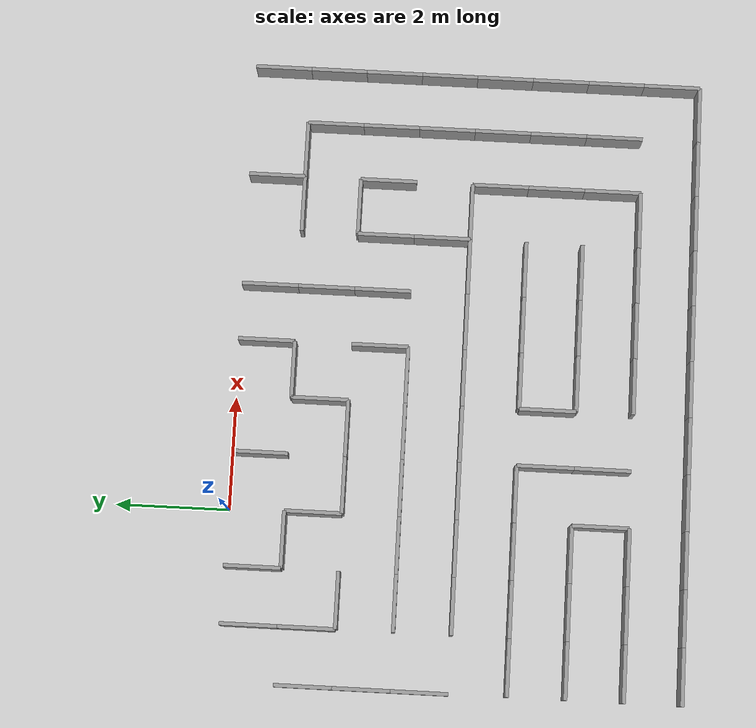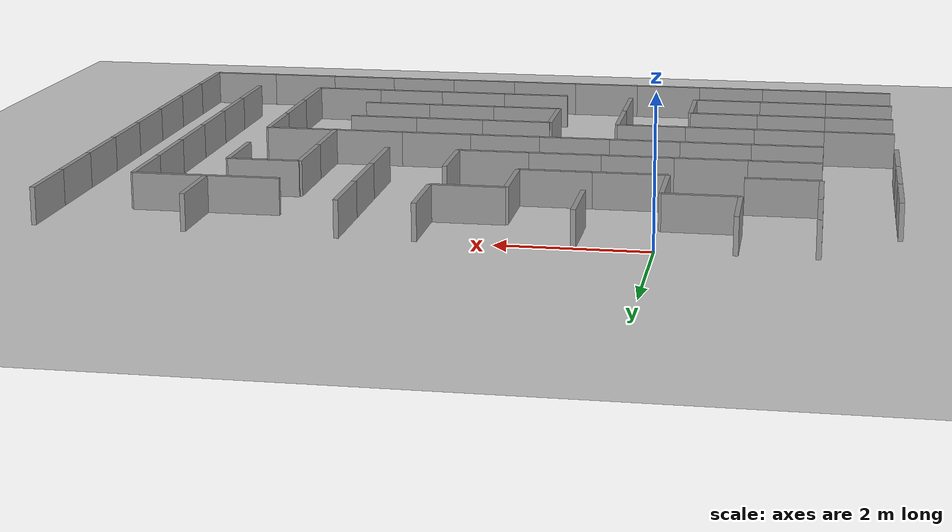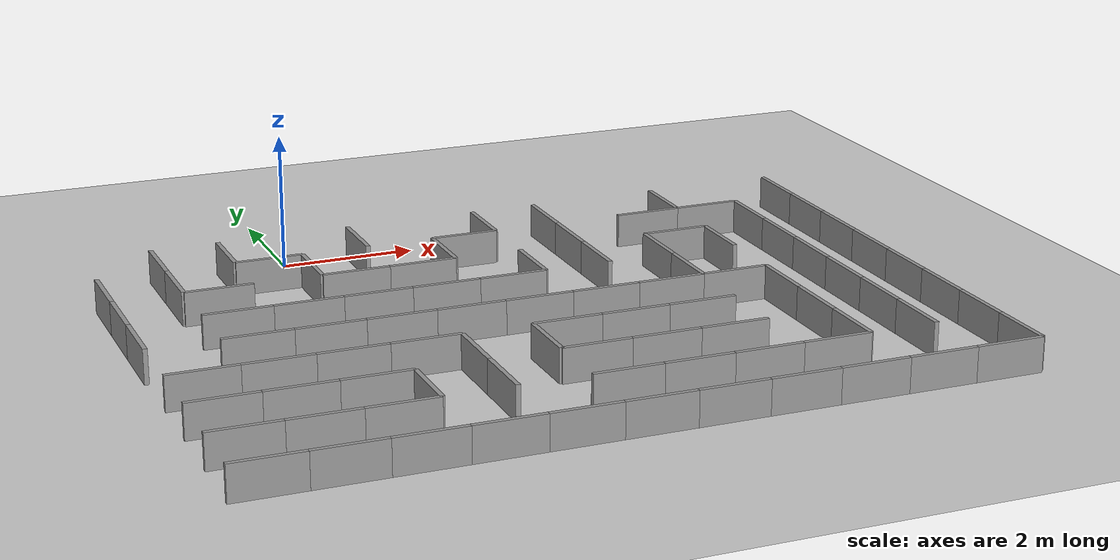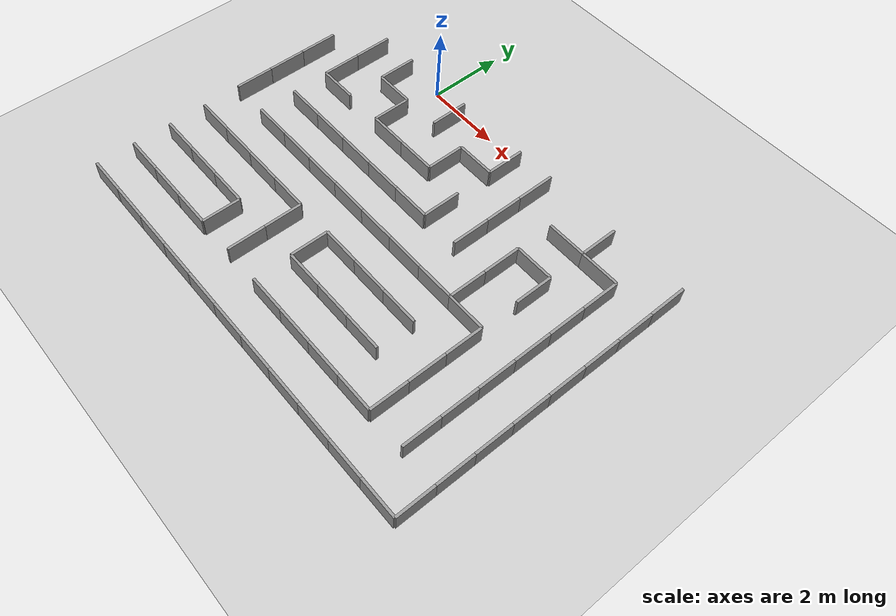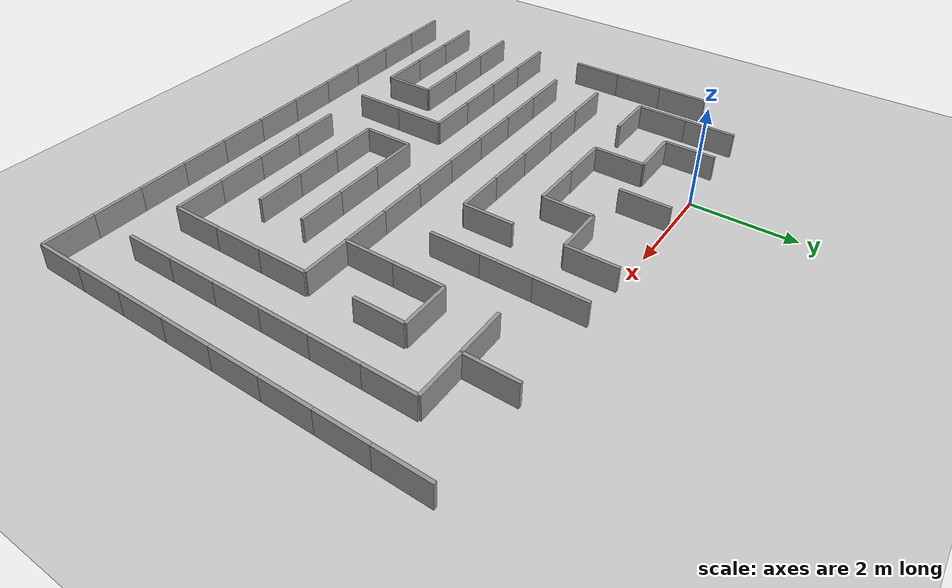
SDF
<sdf version="1.7">
 <world name="maze_world">
  <include><uri>model://sun</uri></include>
  <include><uri>model://ground_plane</uri></include>
  <model name="wall_145">
   <static>true</static>
   <pose>-2.0 -0.5 0.25 0 0 1.5707963267948966</pose>
   <link name="link">
    <collision name="collision"><geometry><box><size>1.0 0.066 0.5</size></box></geometry></collision>
    <visual name="visual">
     <geometry><box><size>1.0 0.066 0.5</size></box></geometry>
     <material>
      <script><uri>file://media/materials/scripts/gazebo.material</uri><name>Gazebo/Grey</name></script>
     </material>
    </visual>
   </link>
  </model>
  <model name="wall_146">
   <static>true</static>
   <pose>-1.0 -0.5 0.25 0 0 1.5707963267948966</pose>
   <link name="link">
    <collision name="collision"><geometry><box><size>1.0 0.066 0.5</size></box></geometry></collision>
    <visual name="visual">
     <geometry><box><size>1.0 0.066 0.5</size></box></geometry>
     <material>
      <script><uri>file://media/materials/scripts/gazebo.material</uri><name>Gazebo/Grey</name></script>
     </material>
    </visual>
   </link>
  </model>
  <model name="wall_147">
   <static>true</static>
   <pose>1.0 -0.5 0.25 0 0 1.5707963267948966</pose>
   <link name="link">
    <collision name="collision"><geometry><box><size>1.0 0.066 0.5</size></box></geometry></collision>
    <visual name="visual">
     <geometry><box><size>1.0 0.066 0.5</size></box></geometry>
     <material>
      <script><uri>file://media/materials/scripts/gazebo.material</uri><name>Gazebo/Grey</name></script>
     </material>
    </visual>
   </link>
  </model>
  <model name="wall_148">
   <static>true</static>
   <pose>3.0 -0.5 0.25 0 0 1.5707963267948966</pose>
   <link name="link">
    <collision name="collision"><geometry><box><size>1.0 0.066 0.5</size></box></geometry></collision>
    <visual name="visual">
     <geometry><box><size>1.0 0.066 0.5</size></box></geometry>
     <material>
      <script><uri>file://media/materials/scripts/gazebo.material</uri><name>Gazebo/Grey</name></script>
     </material>
    </visual>
   </link>
  </model>
  <model name="wall_149">
   <static>true</static>
   <pose>4.0 -0.5 0.25 0 0 1.5707963267948966</pose>
   <link name="link">
    <collision name="collision"><geometry><box><size>1.0 0.066 0.5</size></box></geometry></collision>
    <visual name="visual">
     <geometry><box><size>1.0 0.066 0.5</size></box></geometry>
     <material>
      <script><uri>file://media/materials/scripts/gazebo.material</uri><name>Gazebo/Grey</name></script>
     </material>
    </visual>
   </link>
  </model>
  <model name="wall_150">
   <static>true</static>
   <pose>6.0 -0.5 0.25 0 0 1.5707963267948966</pose>
   <link name="link">
    <collision name="collision"><geometry><box><size>1.0 0.066 0.5</size></box></geometry></collision>
    <visual name="visual">
     <geometry><box><size>1.0 0.066 0.5</size></box></geometry>
     <material>
      <script><uri>file://media/materials/scripts/gazebo.material</uri><name>Gazebo/Grey</name></script>
     </material>
    </visual>
   </link>
  </model>
  <model name="wall_151">
   <static>true</static>
   <pose>8.0 -0.5 0.25 0 0 1.5707963267948966</pose>
   <link name="link">
    <collision name="collision"><geometry><box><size>1.0 0.066 0.5</size></box></geometry></collision>
    <visual name="visual">
     <geometry><box><size>1.0 0.066 0.5</size></box></geometry>
     <material>
      <script><uri>file://media/materials/scripts/gazebo.material</uri><name>Gazebo/Grey</name></script>
     </material>
    </visual>
   </link>
  </model>
  <model name="wall_153">
   <static>true</static>
   <pose>-0.5 -1.0 0.25 0 0 0</pose>
   <link name="link">
    <collision name="collision"><geometry><box><size>1.0 0.066 0.5</size></box></geometry></collision>
    <visual name="visual">
     <geometry><box><size>1.0 0.066 0.5</size></box></geometry>
     <material>
      <script><uri>file://media/materials/scripts/gazebo.material</uri><name>Gazebo/Grey</name></script>
     </material>
    </visual>
   </link>
  </model>
  <model name="wall_154">
   <static>true</static>
   <pose>2.5 -1.0 0.25 0 0 0</pose>
   <link name="link">
    <collision name="collision"><geometry><box><size>1.0 0.066 0.5</size></box></geometry></collision>
    <visual name="visual">
     <geometry><box><size>1.0 0.066 0.5</size></box></geometry>
     <material>
      <script><uri>file://media/materials/scripts/gazebo.material</uri><name>Gazebo/Grey</name></script>
     </material>
    </visual>
   </link>
  </model>
  <model name="wall_155">
   <static>true</static>
   <pose>5.5 -1.0 0.25 0 0 0</pose>
   <link name="link">
    <collision name="collision"><geometry><box><size>1.0 0.066 0.5</size></box></geometry></collision>
    <visual name="visual">
     <geometry><box><size>1.0 0.066 0.5</size></box></geometry>
     <material>
      <script><uri>file://media/materials/scripts/gazebo.material</uri><name>Gazebo/Grey</name></script>
     </material>
    </visual>
   </link>
  </model>
  <model name="wall_156">
   <static>true</static>
   <pose>6.5 -1.0 0.25 0 0 0</pose>
   <link name="link">
    <collision name="collision"><geometry><box><size>1.0 0.066 0.5</size></box></geometry></collision>
    <visual name="visual">
     <geometry><box><size>1.0 0.066 0.5</size></box></geometry>
     <material>
      <script><uri>file://media/materials/scripts/gazebo.material</uri><name>Gazebo/Grey</name></script>
     </material>
    </visual>
   </link>
  </model>
  <model name="wall_160">
   <static>true</static>
   <pose>-3.0 -1.5 0.25 0 0 1.5707963267948966</pose>
   <link name="link">
    <collision name="collision"><geometry><box><size>1.0 0.066 0.5</size></box></geometry></collision>
    <visual name="visual">
     <geometry><box><size>1.0 0.066 0.5</size></box></geometry>
     <material>
      <script><uri>file://media/materials/scripts/gazebo.material</uri><name>Gazebo/Grey</name></script>
     </material>
    </visual>
   </link>
  </model>
  <model name="wall_161">
   <static>true</static>
   <pose>-2.0 -1.5 0.25 0 0 1.5707963267948966</pose>
   <link name="link">
    <collision name="collision"><geometry><box><size>1.0 0.066 0.5</size></box></geometry></collision>
    <visual name="visual">
     <geometry><box><size>1.0 0.066 0.5</size></box></geometry>
     <material>
      <script><uri>file://media/materials/scripts/gazebo.material</uri><name>Gazebo/Grey</name></script>
     </material>
    </visual>
   </link>
  </model>
  <model name="wall_162">
   <static>true</static>
   <pose>0.0 -1.5 0.25 0 0 1.5707963267948966</pose>
   <link name="link">
    <collision name="collision"><geometry><box><size>1.0 0.066 0.5</size></box></geometry></collision>
    <visual name="visual">
     <geometry><box><size>1.0 0.066 0.5</size></box></geometry>
     <material>
      <script><uri>file://media/materials/scripts/gazebo.material</uri><name>Gazebo/Grey</name></script>
     </material>
    </visual>
   </link>
  </model>
  <model name="wall_163">
   <static>true</static>
   <pose>2.0 -1.5 0.25 0 0 1.5707963267948966</pose>
   <link name="link">
    <collision name="collision"><geometry><box><size>1.0 0.066 0.5</size></box></geometry></collision>
    <visual name="visual">
     <geometry><box><size>1.0 0.066 0.5</size></box></geometry>
     <material>
      <script><uri>file://media/materials/scripts/gazebo.material</uri><name>Gazebo/Grey</name></script>
     </material>
    </visual>
   </link>
  </model>
  <model name="wall_164">
   <static>true</static>
   <pose>4.0 -1.5 0.25 0 0 1.5707963267948966</pose>
   <link name="link">
    <collision name="collision"><geometry><box><size>1.0 0.066 0.5</size></box></geometry></collision>
    <visual name="visual">
     <geometry><box><size>1.0 0.066 0.5</size></box></geometry>
     <material>
      <script><uri>file://media/materials/scripts/gazebo.material</uri><name>Gazebo/Grey</name></script>
     </material>
    </visual>
   </link>
  </model>
  <model name="wall_165">
   <static>true</static>
   <pose>7.0 -1.5 0.25 0 0 1.5707963267948966</pose>
   <link name="link">
    <collision name="collision"><geometry><box><size>1.0 0.066 0.5</size></box></geometry></collision>
    <visual name="visual">
     <geometry><box><size>1.0 0.066 0.5</size></box></geometry>
     <material>
      <script><uri>file://media/materials/scripts/gazebo.material</uri><name>Gazebo/Grey</name></script>
     </material>
    </visual>
   </link>
  </model>
  <model name="wall_166">
   <static>true</static>
   <pose>8.0 -1.5 0.25 0 0 1.5707963267948966</pose>
   <link name="link">
    <collision name="collision"><geometry><box><size>1.0 0.066 0.5</size></box></geometry></collision>
    <visual name="visual">
     <geometry><box><size>1.0 0.066 0.5</size></box></geometry>
     <material>
      <script><uri>file://media/materials/scripts/gazebo.material</uri><name>Gazebo/Grey</name></script>
     </material>
    </visual>
   </link>
  </model>
  <model name="wall_168">
   <static>true</static>
   <pose>-1.5 -2.0 0.25 0 0 0</pose>
   <link name="link">
    <collision name="collision"><geometry><box><size>1.0 0.066 0.5</size></box></geometry></collision>
    <visual name="visual">
     <geometry><box><size>1.0 0.066 0.5</size></box></geometry>
     <material>
      <script><uri>file://media/materials/scripts/gazebo.material</uri><name>Gazebo/Grey</name></script>
     </material>
    </visual>
   </link>
  </model>
  <model name="wall_169">
   <static>true</static>
   <pose>0.5 -2.0 0.25 0 0 0</pose>
   <link name="link">
    <collision name="collision"><geometry><box><size>1.0 0.066 0.5</size></box></geometry></collision>
    <visual name="visual">
     <geometry><box><size>1.0 0.066 0.5</size></box></geometry>
     <material>
      <script><uri>file://media/materials/scripts/gazebo.material</uri><name>Gazebo/Grey</name></script>
     </material>
    </visual>
   </link>
  </model>
  <model name="wall_170">
   <static>true</static>
   <pose>1.5 -2.0 0.25 0 0 0</pose>
   <link name="link">
    <collision name="collision"><geometry><box><size>1.0 0.066 0.5</size></box></geometry></collision>
    <visual name="visual">
     <geometry><box><size>1.0 0.066 0.5</size></box></geometry>
     <material>
      <script><uri>file://media/materials/scripts/gazebo.material</uri><name>Gazebo/Grey</name></script>
     </material>
    </visual>
   </link>
  </model>
  <model name="wall_171">
   <static>true</static>
   <pose>5.5 -2.0 0.25 0 0 0</pose>
   <link name="link">
    <collision name="collision"><geometry><box><size>1.0 0.066 0.5</size></box></geometry></collision>
    <visual name="visual">
     <geometry><box><size>1.0 0.066 0.5</size></box></geometry>
     <material>
      <script><uri>file://media/materials/scripts/gazebo.material</uri><name>Gazebo/Grey</name></script>
     </material>
    </visual>
   </link>
  </model>
  <model name="wall_176">
   <static>true</static>
   <pose>-3.0 -2.5 0.25 0 0 1.5707963267948966</pose>
   <link name="link">
    <collision name="collision"><geometry><box><size>1.0 0.066 0.5</size></box></geometry></collision>
    <visual name="visual">
     <geometry><box><size>1.0 0.066 0.5</size></box></geometry>
     <material>
      <script><uri>file://media/materials/scripts/gazebo.material</uri><name>Gazebo/Grey</name></script>
     </material>
    </visual>
   </link>
  </model>
  <model name="wall_177">
   <static>true</static>
   <pose>3.0 -2.5 0.25 0 0 1.5707963267948966</pose>
   <link name="link">
    <collision name="collision"><geometry><box><size>1.0 0.066 0.5</size></box></geometry></collision>
    <visual name="visual">
     <geometry><box><size>1.0 0.066 0.5</size></box></geometry>
     <material>
      <script><uri>file://media/materials/scripts/gazebo.material</uri><name>Gazebo/Grey</name></script>
     </material>
    </visual>
   </link>
  </model>
  <model name="wall_178">
   <static>true</static>
   <pose>4.0 -2.5 0.25 0 0 1.5707963267948966</pose>
   <link name="link">
    <collision name="collision"><geometry><box><size>1.0 0.066 0.5</size></box></geometry></collision>
    <visual name="visual">
     <geometry><box><size>1.0 0.066 0.5</size></box></geometry>
     <material>
      <script><uri>file://media/materials/scripts/gazebo.material</uri><name>Gazebo/Grey</name></script>
     </material>
    </visual>
   </link>
  </model>
  <model name="wall_179">
   <static>true</static>
   <pose>5.0 -2.5 0.25 0 0 1.5707963267948966</pose>
   <link name="link">
    <collision name="collision"><geometry><box><size>1.0 0.066 0.5</size></box></geometry></collision>
    <visual name="visual">
     <geometry><box><size>1.0 0.066 0.5</size></box></geometry>
     <material>
      <script><uri>file://media/materials/scripts/gazebo.material</uri><name>Gazebo/Grey</name></script>
     </material>
    </visual>
   </link>
  </model>
  <model name="wall_180">
   <static>true</static>
   <pose>6.0 -2.5 0.25 0 0 1.5707963267948966</pose>
   <link name="link">
    <collision name="collision"><geometry><box><size>1.0 0.066 0.5</size></box></geometry></collision>
    <visual name="visual">
     <geometry><box><size>1.0 0.066 0.5</size></box></geometry>
     <material>
      <script><uri>file://media/materials/scripts/gazebo.material</uri><name>Gazebo/Grey</name></script>
     </material>
    </visual>
   </link>
  </model>
  <model name="wall_181">
   <static>true</static>
   <pose>7.0 -2.5 0.25 0 0 1.5707963267948966</pose>
   <link name="link">
    <collision name="collision"><geometry><box><size>1.0 0.066 0.5</size></box></geometry></collision>
    <visual name="visual">
     <geometry><box><size>1.0 0.066 0.5</size></box></geometry>
     <material>
      <script><uri>file://media/materials/scripts/gazebo.material</uri><name>Gazebo/Grey</name></script>
     </material>
    </visual>
   </link>
  </model>
  <model name="wall_182">
   <static>true</static>
   <pose>8.0 -2.5 0.25 0 0 1.5707963267948966</pose>
   <link name="link">
    <collision name="collision"><geometry><box><size>1.0 0.066 0.5</size></box></geometry></collision>
    <visual name="visual">
     <geometry><box><size>1.0 0.066 0.5</size></box></geometry>
     <material>
      <script><uri>file://media/materials/scripts/gazebo.material</uri><name>Gazebo/Grey</name></script>
     </material>
    </visual>
   </link>
  </model>
  <model name="wall_184">
   <static>true</static>
   <pose>-1.5 -3.0 0.25 0 0 0</pose>
   <link name="link">
    <collision name="collision"><geometry><box><size>1.0 0.066 0.5</size></box></geometry></collision>
    <visual name="visual">
     <geometry><box><size>1.0 0.066 0.5</size></box></geometry>
     <material>
      <script><uri>file://media/materials/scripts/gazebo.material</uri><name>Gazebo/Grey</name></script>
     </material>
    </visual>
   </link>
  </model>
  <model name="wall_185">
   <static>true</static>
   <pose>-0.5 -3.0 0.25 0 0 0</pose>
   <link name="link">
    <collision name="collision"><geometry><box><size>1.0 0.066 0.5</size></box></geometry></collision>
    <visual name="visual">
     <geometry><box><size>1.0 0.066 0.5</size></box></geometry>
     <material>
      <script><uri>file://media/materials/scripts/gazebo.material</uri><name>Gazebo/Grey</name></script>
     </material>
    </visual>
   </link>
  </model>
  <model name="wall_186">
   <static>true</static>
   <pose>0.5 -3.0 0.25 0 0 0</pose>
   <link name="link">
    <collision name="collision"><geometry><box><size>1.0 0.066 0.5</size></box></geometry></collision>
    <visual name="visual">
     <geometry><box><size>1.0 0.066 0.5</size></box></geometry>
     <material>
      <script><uri>file://media/materials/scripts/gazebo.material</uri><name>Gazebo/Grey</name></script>
     </material>
    </visual>
   </link>
  </model>
  <model name="wall_187">
   <static>true</static>
   <pose>1.5 -3.0 0.25 0 0 0</pose>
   <link name="link">
    <collision name="collision"><geometry><box><size>1.0 0.066 0.5</size></box></geometry></collision>
    <visual name="visual">
     <geometry><box><size>1.0 0.066 0.5</size></box></geometry>
     <material>
      <script><uri>file://media/materials/scripts/gazebo.material</uri><name>Gazebo/Grey</name></script>
     </material>
    </visual>
   </link>
  </model>
  <model name="wall_188">
   <static>true</static>
   <pose>2.5 -3.0 0.25 0 0 0</pose>
   <link name="link">
    <collision name="collision"><geometry><box><size>1.0 0.066 0.5</size></box></geometry></collision>
    <visual name="visual">
     <geometry><box><size>1.0 0.066 0.5</size></box></geometry>
     <material>
      <script><uri>file://media/materials/scripts/gazebo.material</uri><name>Gazebo/Grey</name></script>
     </material>
    </visual>
   </link>
  </model>
  <model name="wall_192">
   <static>true</static>
   <pose>-3.0 -3.5 0.25 0 0 1.5707963267948966</pose>
   <link name="link">
    <collision name="collision"><geometry><box><size>1.0 0.066 0.5</size></box></geometry></collision>
    <visual name="visual">
     <geometry><box><size>1.0 0.066 0.5</size></box></geometry>
     <material>
      <script><uri>file://media/materials/scripts/gazebo.material</uri><name>Gazebo/Grey</name></script>
     </material>
    </visual>
   </link>
  </model>
  <model name="wall_193">
   <static>true</static>
   <pose>5.0 -3.5 0.25 0 0 1.5707963267948966</pose>
   <link name="link">
    <collision name="collision"><geometry><box><size>1.0 0.066 0.5</size></box></geometry></collision>
    <visual name="visual">
     <geometry><box><size>1.0 0.066 0.5</size></box></geometry>
     <material>
      <script><uri>file://media/materials/scripts/gazebo.material</uri><name>Gazebo/Grey</name></script>
     </material>
    </visual>
   </link>
  </model>
  <model name="wall_194">
   <static>true</static>
   <pose>7.0 -3.5 0.25 0 0 1.5707963267948966</pose>
   <link name="link">
    <collision name="collision"><geometry><box><size>1.0 0.066 0.5</size></box></geometry></collision>
    <visual name="visual">
     <geometry><box><size>1.0 0.066 0.5</size></box></geometry>
     <material>
      <script><uri>file://media/materials/scripts/gazebo.material</uri><name>Gazebo/Grey</name></script>
     </material>
    </visual>
   </link>
  </model>
  <model name="wall_195">
   <static>true</static>
   <pose>8.0 -3.5 0.25 0 0 1.5707963267948966</pose>
   <link name="link">
    <collision name="collision"><geometry><box><size>1.0 0.066 0.5</size></box></geometry></collision>
    <visual name="visual">
     <geometry><box><size>1.0 0.066 0.5</size></box></geometry>
     <material>
      <script><uri>file://media/materials/scripts/gazebo.material</uri><name>Gazebo/Grey</name></script>
     </material>
    </visual>
   </link>
  </model>
  <model name="wall_197">
   <static>true</static>
   <pose>-1.5 -4.0 0.25 0 0 0</pose>
   <link name="link">
    <collision name="collision"><geometry><box><size>1.0 0.066 0.5</size></box></geometry></collision>
    <visual name="visual">
     <geometry><box><size>1.0 0.066 0.5</size></box></geometry>
     <material>
      <script><uri>file://media/materials/scripts/gazebo.material</uri><name>Gazebo/Grey</name></script>
     </material>
    </visual>
   </link>
  </model>
  <model name="wall_198">
   <static>true</static>
   <pose>-0.5 -4.0 0.25 0 0 0</pose>
   <link name="link">
    <collision name="collision"><geometry><box><size>1.0 0.066 0.5</size></box></geometry></collision>
    <visual name="visual">
     <geometry><box><size>1.0 0.066 0.5</size></box></geometry>
     <material>
      <script><uri>file://media/materials/scripts/gazebo.material</uri><name>Gazebo/Grey</name></script>
     </material>
    </visual>
   </link>
  </model>
  <model name="wall_199">
   <static>true</static>
   <pose>0.5 -4.0 0.25 0 0 0</pose>
   <link name="link">
    <collision name="collision"><geometry><box><size>1.0 0.066 0.5</size></box></geometry></collision>
    <visual name="visual">
     <geometry><box><size>1.0 0.066 0.5</size></box></geometry>
     <material>
      <script><uri>file://media/materials/scripts/gazebo.material</uri><name>Gazebo/Grey</name></script>
     </material>
    </visual>
   </link>
  </model>
  <model name="wall_200">
   <static>true</static>
   <pose>1.5 -4.0 0.25 0 0 0</pose>
   <link name="link">
    <collision name="collision"><geometry><box><size>1.0 0.066 0.5</size></box></geometry></collision>
    <visual name="visual">
     <geometry><box><size>1.0 0.066 0.5</size></box></geometry>
     <material>
      <script><uri>file://media/materials/scripts/gazebo.material</uri><name>Gazebo/Grey</name></script>
     </material>
    </visual>
   </link>
  </model>
  <model name="wall_201">
   <static>true</static>
   <pose>2.5 -4.0 0.25 0 0 0</pose>
   <link name="link">
    <collision name="collision"><geometry><box><size>1.0 0.066 0.5</size></box></geometry></collision>
    <visual name="visual">
     <geometry><box><size>1.0 0.066 0.5</size></box></geometry>
     <material>
      <script><uri>file://media/materials/scripts/gazebo.material</uri><name>Gazebo/Grey</name></script>
     </material>
    </visual>
   </link>
  </model>
  <model name="wall_202">
   <static>true</static>
   <pose>3.5 -4.0 0.25 0 0 0</pose>
   <link name="link">
    <collision name="collision"><geometry><box><size>1.0 0.066 0.5</size></box></geometry></collision>
    <visual name="visual">
     <geometry><box><size>1.0 0.066 0.5</size></box></geometry>
     <material>
      <script><uri>file://media/materials/scripts/gazebo.material</uri><name>Gazebo/Grey</name></script>
     </material>
    </visual>
   </link>
  </model>
  <model name="wall_203">
   <static>true</static>
   <pose>4.5 -4.0 0.25 0 0 0</pose>
   <link name="link">
    <collision name="collision"><geometry><box><size>1.0 0.066 0.5</size></box></geometry></collision>
    <visual name="visual">
     <geometry><box><size>1.0 0.066 0.5</size></box></geometry>
     <material>
      <script><uri>file://media/materials/scripts/gazebo.material</uri><name>Gazebo/Grey</name></script>
     </material>
    </visual>
   </link>
  </model>
  <model name="wall_204">
   <static>true</static>
   <pose>5.5 -4.0 0.25 0 0 0</pose>
   <link name="link">
    <collision name="collision"><geometry><box><size>1.0 0.066 0.5</size></box></geometry></collision>
    <visual name="visual">
     <geometry><box><size>1.0 0.066 0.5</size></box></geometry>
     <material>
      <script><uri>file://media/materials/scripts/gazebo.material</uri><name>Gazebo/Grey</name></script>
     </material>
    </visual>
   </link>
  </model>
  <model name="wall_208">
   <static>true</static>
   <pose>6.0 -4.5 0.25 0 0 1.5707963267948966</pose>
   <link name="link">
    <collision name="collision"><geometry><box><size>1.0 0.066 0.5</size></box></geometry></collision>
    <visual name="visual">
     <geometry><box><size>1.0 0.066 0.5</size></box></geometry>
     <material>
      <script><uri>file://media/materials/scripts/gazebo.material</uri><name>Gazebo/Grey</name></script>
     </material>
    </visual>
   </link>
  </model>
  <model name="wall_209">
   <static>true</static>
   <pose>7.0 -4.5 0.25 0 0 1.5707963267948966</pose>
   <link name="link">
    <collision name="collision"><geometry><box><size>1.0 0.066 0.5</size></box></geometry></collision>
    <visual name="visual">
     <geometry><box><size>1.0 0.066 0.5</size></box></geometry>
     <material>
      <script><uri>file://media/materials/scripts/gazebo.material</uri><name>Gazebo/Grey</name></script>
     </material>
    </visual>
   </link>
  </model>
  <model name="wall_210">
   <static>true</static>
   <pose>8.0 -4.5 0.25 0 0 1.5707963267948966</pose>
   <link name="link">
    <collision name="collision"><geometry><box><size>1.0 0.066 0.5</size></box></geometry></collision>
    <visual name="visual">
     <geometry><box><size>1.0 0.066 0.5</size></box></geometry>
     <material>
      <script><uri>file://media/materials/scripts/gazebo.material</uri><name>Gazebo/Grey</name></script>
     </material>
    </visual>
   </link>
  </model>
  <model name="wall_214">
   <static>true</static>
   <pose>-2.5 -5.0 0.25 0 0 0</pose>
   <link name="link">
    <collision name="collision"><geometry><box><size>1.0 0.066 0.5</size></box></geometry></collision>
    <visual name="visual">
     <geometry><box><size>1.0 0.066 0.5</size></box></geometry>
     <material>
      <script><uri>file://media/materials/scripts/gazebo.material</uri><name>Gazebo/Grey</name></script>
     </material>
    </visual>
   </link>
  </model>
  <model name="wall_215">
   <static>true</static>
   <pose>-1.5 -5.0 0.25 0 0 0</pose>
   <link name="link">
    <collision name="collision"><geometry><box><size>1.0 0.066 0.5</size></box></geometry></collision>
    <visual name="visual">
     <geometry><box><size>1.0 0.066 0.5</size></box></geometry>
     <material>
      <script><uri>file://media/materials/scripts/gazebo.material</uri><name>Gazebo/Grey</name></script>
     </material>
    </visual>
   </link>
  </model>
  <model name="wall_216">
   <static>true</static>
   <pose>-0.5 -5.0 0.25 0 0 0</pose>
   <link name="link">
    <collision name="collision"><geometry><box><size>1.0 0.066 0.5</size></box></geometry></collision>
    <visual name="visual">
     <geometry><box><size>1.0 0.066 0.5</size></box></geometry>
     <material>
      <script><uri>file://media/materials/scripts/gazebo.material</uri><name>Gazebo/Grey</name></script>
     </material>
    </visual>
   </link>
  </model>
  <model name="wall_217">
   <static>true</static>
   <pose>0.5 -5.0 0.25 0 0 0</pose>
   <link name="link">
    <collision name="collision"><geometry><box><size>1.0 0.066 0.5</size></box></geometry></collision>
    <visual name="visual">
     <geometry><box><size>1.0 0.066 0.5</size></box></geometry>
     <material>
      <script><uri>file://media/materials/scripts/gazebo.material</uri><name>Gazebo/Grey</name></script>
     </material>
    </visual>
   </link>
  </model>
  <model name="wall_218">
   <static>true</static>
   <pose>2.5 -5.0 0.25 0 0 0</pose>
   <link name="link">
    <collision name="collision"><geometry><box><size>1.0 0.066 0.5</size></box></geometry></collision>
    <visual name="visual">
     <geometry><box><size>1.0 0.066 0.5</size></box></geometry>
     <material>
      <script><uri>file://media/materials/scripts/gazebo.material</uri><name>Gazebo/Grey</name></script>
     </material>
    </visual>
   </link>
  </model>
  <model name="wall_219">
   <static>true</static>
   <pose>3.5 -5.0 0.25 0 0 0</pose>
   <link name="link">
    <collision name="collision"><geometry><box><size>1.0 0.066 0.5</size></box></geometry></collision>
    <visual name="visual">
     <geometry><box><size>1.0 0.066 0.5</size></box></geometry>
     <material>
      <script><uri>file://media/materials/scripts/gazebo.material</uri><name>Gazebo/Grey</name></script>
     </material>
    </visual>
   </link>
  </model>
  <model name="wall_220">
   <static>true</static>
   <pose>4.5 -5.0 0.25 0 0 0</pose>
   <link name="link">
    <collision name="collision"><geometry><box><size>1.0 0.066 0.5</size></box></geometry></collision>
    <visual name="visual">
     <geometry><box><size>1.0 0.066 0.5</size></box></geometry>
     <material>
      <script><uri>file://media/materials/scripts/gazebo.material</uri><name>Gazebo/Grey</name></script>
     </material>
    </visual>
   </link>
  </model>
  <model name="wall_224">
   <static>true</static>
   <pose>1.0 -5.5 0.25 0 0 1.5707963267948966</pose>
   <link name="link">
    <collision name="collision"><geometry><box><size>1.0 0.066 0.5</size></box></geometry></collision>
    <visual name="visual">
     <geometry><box><size>1.0 0.066 0.5</size></box></geometry>
     <material>
      <script><uri>file://media/materials/scripts/gazebo.material</uri><name>Gazebo/Grey</name></script>
     </material>
    </visual>
   </link>
  </model>
  <model name="wall_225">
   <static>true</static>
   <pose>2.0 -5.5 0.25 0 0 1.5707963267948966</pose>
   <link name="link">
    <collision name="collision"><geometry><box><size>1.0 0.066 0.5</size></box></geometry></collision>
    <visual name="visual">
     <geometry><box><size>1.0 0.066 0.5</size></box></geometry>
     <material>
      <script><uri>file://media/materials/scripts/gazebo.material</uri><name>Gazebo/Grey</name></script>
     </material>
    </visual>
   </link>
  </model>
  <model name="wall_226">
   <static>true</static>
   <pose>6.0 -5.5 0.25 0 0 1.5707963267948966</pose>
   <link name="link">
    <collision name="collision"><geometry><box><size>1.0 0.066 0.5</size></box></geometry></collision>
    <visual name="visual">
     <geometry><box><size>1.0 0.066 0.5</size></box></geometry>
     <material>
      <script><uri>file://media/materials/scripts/gazebo.material</uri><name>Gazebo/Grey</name></script>
     </material>
    </visual>
   </link>
  </model>
  <model name="wall_227">
   <static>true</static>
   <pose>7.0 -5.5 0.25 0 0 1.5707963267948966</pose>
   <link name="link">
    <collision name="collision"><geometry><box><size>1.0 0.066 0.5</size></box></geometry></collision>
    <visual name="visual">
     <geometry><box><size>1.0 0.066 0.5</size></box></geometry>
     <material>
      <script><uri>file://media/materials/scripts/gazebo.material</uri><name>Gazebo/Grey</name></script>
     </material>
    </visual>
   </link>
  </model>
  <model name="wall_228">
   <static>true</static>
   <pose>8.0 -5.5 0.25 0 0 1.5707963267948966</pose>
   <link name="link">
    <collision name="collision"><geometry><box><size>1.0 0.066 0.5</size></box></geometry></collision>
    <visual name="visual">
     <geometry><box><size>1.0 0.066 0.5</size></box></geometry>
     <material>
      <script><uri>file://media/materials/scripts/gazebo.material</uri><name>Gazebo/Grey</name></script>
     </material>
    </visual>
   </link>
  </model>
  <model name="wall_230">
   <static>true</static>
   <pose>-2.5 -6.0 0.25 0 0 0</pose>
   <link name="link">
    <collision name="collision"><geometry><box><size>1.0 0.066 0.5</size></box></geometry></collision>
    <visual name="visual">
     <geometry><box><size>1.0 0.066 0.5</size></box></geometry>
     <material>
      <script><uri>file://media/materials/scripts/gazebo.material</uri><name>Gazebo/Grey</name></script>
     </material>
    </visual>
   </link>
  </model>
  <model name="wall_231">
   <static>true</static>
   <pose>-1.5 -6.0 0.25 0 0 0</pose>
   <link name="link">
    <collision name="collision"><geometry><box><size>1.0 0.066 0.5</size></box></geometry></collision>
    <visual name="visual">
     <geometry><box><size>1.0 0.066 0.5</size></box></geometry>
     <material>
      <script><uri>file://media/materials/scripts/gazebo.material</uri><name>Gazebo/Grey</name></script>
     </material>
    </visual>
   </link>
  </model>
  <model name="wall_232">
   <static>true</static>
   <pose>-0.5 -6.0 0.25 0 0 0</pose>
   <link name="link">
    <collision name="collision"><geometry><box><size>1.0 0.066 0.5</size></box></geometry></collision>
    <visual name="visual">
     <geometry><box><size>1.0 0.066 0.5</size></box></geometry>
     <material>
      <script><uri>file://media/materials/scripts/gazebo.material</uri><name>Gazebo/Grey</name></script>
     </material>
    </visual>
   </link>
  </model>
  <model name="wall_233">
   <static>true</static>
   <pose>2.5 -6.0 0.25 0 0 0</pose>
   <link name="link">
    <collision name="collision"><geometry><box><size>1.0 0.066 0.5</size></box></geometry></collision>
    <visual name="visual">
     <geometry><box><size>1.0 0.066 0.5</size></box></geometry>
     <material>
      <script><uri>file://media/materials/scripts/gazebo.material</uri><name>Gazebo/Grey</name></script>
     </material>
    </visual>
   </link>
  </model>
  <model name="wall_234">
   <static>true</static>
   <pose>3.5 -6.0 0.25 0 0 0</pose>
   <link name="link">
    <collision name="collision"><geometry><box><size>1.0 0.066 0.5</size></box></geometry></collision>
    <visual name="visual">
     <geometry><box><size>1.0 0.066 0.5</size></box></geometry>
     <material>
      <script><uri>file://media/materials/scripts/gazebo.material</uri><name>Gazebo/Grey</name></script>
     </material>
    </visual>
   </link>
  </model>
  <model name="wall_235">
   <static>true</static>
   <pose>4.5 -6.0 0.25 0 0 0</pose>
   <link name="link">
    <collision name="collision"><geometry><box><size>1.0 0.066 0.5</size></box></geometry></collision>
    <visual name="visual">
     <geometry><box><size>1.0 0.066 0.5</size></box></geometry>
     <material>
      <script><uri>file://media/materials/scripts/gazebo.material</uri><name>Gazebo/Grey</name></script>
     </material>
    </visual>
   </link>
  </model>
  <model name="wall_240">
   <static>true</static>
   <pose>0.0 -6.5 0.25 0 0 1.5707963267948966</pose>
   <link name="link">
    <collision name="collision"><geometry><box><size>1.0 0.066 0.5</size></box></geometry></collision>
    <visual name="visual">
     <geometry><box><size>1.0 0.066 0.5</size></box></geometry>
     <material>
      <script><uri>file://media/materials/scripts/gazebo.material</uri><name>Gazebo/Grey</name></script>
     </material>
    </visual>
   </link>
  </model>
  <model name="wall_241">
   <static>true</static>
   <pose>1.0 -6.5 0.25 0 0 1.5707963267948966</pose>
   <link name="link">
    <collision name="collision"><geometry><box><size>1.0 0.066 0.5</size></box></geometry></collision>
    <visual name="visual">
     <geometry><box><size>1.0 0.066 0.5</size></box></geometry>
     <material>
      <script><uri>file://media/materials/scripts/gazebo.material</uri><name>Gazebo/Grey</name></script>
     </material>
    </visual>
   </link>
  </model>
  <model name="wall_242">
   <static>true</static>
   <pose>6.0 -6.5 0.25 0 0 1.5707963267948966</pose>
   <link name="link">
    <collision name="collision"><geometry><box><size>1.0 0.066 0.5</size></box></geometry></collision>
    <visual name="visual">
     <geometry><box><size>1.0 0.066 0.5</size></box></geometry>
     <material>
      <script><uri>file://media/materials/scripts/gazebo.material</uri><name>Gazebo/Grey</name></script>
     </material>
    </visual>
   </link>
  </model>
  <model name="wall_243">
   <static>true</static>
   <pose>7.0 -6.5 0.25 0 0 1.5707963267948966</pose>
   <link name="link">
    <collision name="collision"><geometry><box><size>1.0 0.066 0.5</size></box></geometry></collision>
    <visual name="visual">
     <geometry><box><size>1.0 0.066 0.5</size></box></geometry>
     <material>
      <script><uri>file://media/materials/scripts/gazebo.material</uri><name>Gazebo/Grey</name></script>
     </material>
    </visual>
   </link>
  </model>
  <model name="wall_244">
   <static>true</static>
   <pose>8.0 -6.5 0.25 0 0 1.5707963267948966</pose>
   <link name="link">
    <collision name="collision"><geometry><box><size>1.0 0.066 0.5</size></box></geometry></collision>
    <visual name="visual">
     <geometry><box><size>1.0 0.066 0.5</size></box></geometry>
     <material>
      <script><uri>file://media/materials/scripts/gazebo.material</uri><name>Gazebo/Grey</name></script>
     </material>
    </visual>
   </link>
  </model>
  <model name="wall_247">
   <static>true</static>
   <pose>-2.5 -7.0 0.25 0 0 0</pose>
   <link name="link">
    <collision name="collision"><geometry><box><size>1.0 0.066 0.5</size></box></geometry></collision>
    <visual name="visual">
     <geometry><box><size>1.0 0.066 0.5</size></box></geometry>
     <material>
      <script><uri>file://media/materials/scripts/gazebo.material</uri><name>Gazebo/Grey</name></script>
     </material>
    </visual>
   </link>
  </model>
  <model name="wall_248">
   <static>true</static>
   <pose>-1.5 -7.0 0.25 0 0 0</pose>
   <link name="link">
    <collision name="collision"><geometry><box><size>1.0 0.066 0.5</size></box></geometry></collision>
    <visual name="visual">
     <geometry><box><size>1.0 0.066 0.5</size></box></geometry>
     <material>
      <script><uri>file://media/materials/scripts/gazebo.material</uri><name>Gazebo/Grey</name></script>
     </material>
    </visual>
   </link>
  </model>
  <model name="wall_249">
   <static>true</static>
   <pose>-0.5 -7.0 0.25 0 0 0</pose>
   <link name="link">
    <collision name="collision"><geometry><box><size>1.0 0.066 0.5</size></box></geometry></collision>
    <visual name="visual">
     <geometry><box><size>1.0 0.066 0.5</size></box></geometry>
     <material>
      <script><uri>file://media/materials/scripts/gazebo.material</uri><name>Gazebo/Grey</name></script>
     </material>
    </visual>
   </link>
  </model>
  <model name="wall_250">
   <static>true</static>
   <pose>2.5 -7.0 0.25 0 0 0</pose>
   <link name="link">
    <collision name="collision"><geometry><box><size>1.0 0.066 0.5</size></box></geometry></collision>
    <visual name="visual">
     <geometry><box><size>1.0 0.066 0.5</size></box></geometry>
     <material>
      <script><uri>file://media/materials/scripts/gazebo.material</uri><name>Gazebo/Grey</name></script>
     </material>
    </visual>
   </link>
  </model>
  <model name="wall_251">
   <static>true</static>
   <pose>3.5 -7.0 0.25 0 0 0</pose>
   <link name="link">
    <collision name="collision"><geometry><box><size>1.0 0.066 0.5</size></box></geometry></collision>
    <visual name="visual">
     <geometry><box><size>1.0 0.066 0.5</size></box></geometry>
     <material>
      <script><uri>file://media/materials/scripts/gazebo.material</uri><name>Gazebo/Grey</name></script>
     </material>
    </visual>
   </link>
  </model>
  <model name="wall_252">
   <static>true</static>
   <pose>4.5 -7.0 0.25 0 0 0</pose>
   <link name="link">
    <collision name="collision"><geometry><box><size>1.0 0.066 0.5</size></box></geometry></collision>
    <visual name="visual">
     <geometry><box><size>1.0 0.066 0.5</size></box></geometry>
     <material>
      <script><uri>file://media/materials/scripts/gazebo.material</uri><name>Gazebo/Grey</name></script>
     </material>
    </visual>
   </link>
  </model>
  <model name="wall_253">
   <static>true</static>
   <pose>5.5 -7.0 0.25 0 0 0</pose>
   <link name="link">
    <collision name="collision"><geometry><box><size>1.0 0.066 0.5</size></box></geometry></collision>
    <visual name="visual">
     <geometry><box><size>1.0 0.066 0.5</size></box></geometry>
     <material>
      <script><uri>file://media/materials/scripts/gazebo.material</uri><name>Gazebo/Grey</name></script>
     </material>
    </visual>
   </link>
  </model>
  <model name="wall_256">
   <static>true</static>
   <pose>8.0 -7.5 0.25 0 0 1.5707963267948966</pose>
   <link name="link">
    <collision name="collision"><geometry><box><size>1.0 0.066 0.5</size></box></geometry></collision>
    <visual name="visual">
     <geometry><box><size>1.0 0.066 0.5</size></box></geometry>
     <material>
      <script><uri>file://media/materials/scripts/gazebo.material</uri><name>Gazebo/Grey</name></script>
     </material>
    </visual>
   </link>
  </model>
  <model name="wall_262">
   <static>true</static>
   <pose>-2.5 -8.0 0.25 0 0 0</pose>
   <link name="link">
    <collision name="collision"><geometry><box><size>1.0 0.066 0.5</size></box></geometry></collision>
    <visual name="visual">
     <geometry><box><size>1.0 0.066 0.5</size></box></geometry>
     <material>
      <script><uri>file://media/materials/scripts/gazebo.material</uri><name>Gazebo/Grey</name></script>
     </material>
    </visual>
   </link>
  </model>
  <model name="wall_263">
   <static>true</static>
   <pose>-1.5 -8.0 0.25 0 0 0</pose>
   <link name="link">
    <collision name="collision"><geometry><box><size>1.0 0.066 0.5</size></box></geometry></collision>
    <visual name="visual">
     <geometry><box><size>1.0 0.066 0.5</size></box></geometry>
     <material>
      <script><uri>file://media/materials/scripts/gazebo.material</uri><name>Gazebo/Grey</name></script>
     </material>
    </visual>
   </link>
  </model>
  <model name="wall_264">
   <static>true</static>
   <pose>-0.5 -8.0 0.25 0 0 0</pose>
   <link name="link">
    <collision name="collision"><geometry><box><size>1.0 0.066 0.5</size></box></geometry></collision>
    <visual name="visual">
     <geometry><box><size>1.0 0.066 0.5</size></box></geometry>
     <material>
      <script><uri>file://media/materials/scripts/gazebo.material</uri><name>Gazebo/Grey</name></script>
     </material>
    </visual>
   </link>
  </model>
  <model name="wall_265">
   <static>true</static>
   <pose>0.5 -8.0 0.25 0 0 0</pose>
   <link name="link">
    <collision name="collision"><geometry><box><size>1.0 0.066 0.5</size></box></geometry></collision>
    <visual name="visual">
     <geometry><box><size>1.0 0.066 0.5</size></box></geometry>
     <material>
      <script><uri>file://media/materials/scripts/gazebo.material</uri><name>Gazebo/Grey</name></script>
     </material>
    </visual>
   </link>
  </model>
  <model name="wall_266">
   <static>true</static>
   <pose>1.5 -8.0 0.25 0 0 0</pose>
   <link name="link">
    <collision name="collision"><geometry><box><size>1.0 0.066 0.5</size></box></geometry></collision>
    <visual name="visual">
     <geometry><box><size>1.0 0.066 0.5</size></box></geometry>
     <material>
      <script><uri>file://media/materials/scripts/gazebo.material</uri><name>Gazebo/Grey</name></script>
     </material>
    </visual>
   </link>
  </model>
  <model name="wall_267">
   <static>true</static>
   <pose>2.5 -8.0 0.25 0 0 0</pose>
   <link name="link">
    <collision name="collision"><geometry><box><size>1.0 0.066 0.5</size></box></geometry></collision>
    <visual name="visual">
     <geometry><box><size>1.0 0.066 0.5</size></box></geometry>
     <material>
      <script><uri>file://media/materials/scripts/gazebo.material</uri><name>Gazebo/Grey</name></script>
     </material>
    </visual>
   </link>
  </model>
  <model name="wall_268">
   <static>true</static>
   <pose>3.5 -8.0 0.25 0 0 0</pose>
   <link name="link">
    <collision name="collision"><geometry><box><size>1.0 0.066 0.5</size></box></geometry></collision>
    <visual name="visual">
     <geometry><box><size>1.0 0.066 0.5</size></box></geometry>
     <material>
      <script><uri>file://media/materials/scripts/gazebo.material</uri><name>Gazebo/Grey</name></script>
     </material>
    </visual>
   </link>
  </model>
  <model name="wall_269">
   <static>true</static>
   <pose>4.5 -8.0 0.25 0 0 0</pose>
   <link name="link">
    <collision name="collision"><geometry><box><size>1.0 0.066 0.5</size></box></geometry></collision>
    <visual name="visual">
     <geometry><box><size>1.0 0.066 0.5</size></box></geometry>
     <material>
      <script><uri>file://media/materials/scripts/gazebo.material</uri><name>Gazebo/Grey</name></script>
     </material>
    </visual>
   </link>
  </model>
  <model name="wall_270">
   <static>true</static>
   <pose>5.5 -8.0 0.25 0 0 0</pose>
   <link name="link">
    <collision name="collision"><geometry><box><size>1.0 0.066 0.5</size></box></geometry></collision>
    <visual name="visual">
     <geometry><box><size>1.0 0.066 0.5</size></box></geometry>
     <material>
      <script><uri>file://media/materials/scripts/gazebo.material</uri><name>Gazebo/Grey</name></script>
     </material>
    </visual>
   </link>
  </model>
  <model name="wall_271">
   <static>true</static>
   <pose>6.5 -8.0 0.25 0 0 0</pose>
   <link name="link">
    <collision name="collision"><geometry><box><size>1.0 0.066 0.5</size></box></geometry></collision>
    <visual name="visual">
     <geometry><box><size>1.0 0.066 0.5</size></box></geometry>
     <material>
      <script><uri>file://media/materials/scripts/gazebo.material</uri><name>Gazebo/Grey</name></script>
     </material>
    </visual>
   </link>
  </model>
  <model name="wall_272">
   <static>true</static>
   <pose>7.5 -8.0 0.25 0 0 0</pose>
   <link name="link">
    <collision name="collision"><geometry><box><size>1.0 0.066 0.5</size></box></geometry></collision>
    <visual name="visual">
     <geometry><box><size>1.0 0.066 0.5</size></box></geometry>
     <material>
      <script><uri>file://media/materials/scripts/gazebo.material</uri><name>Gazebo/Grey</name></script>
     </material>
    </visual>
   </link>
  </model>
 </world>
</sdf>
